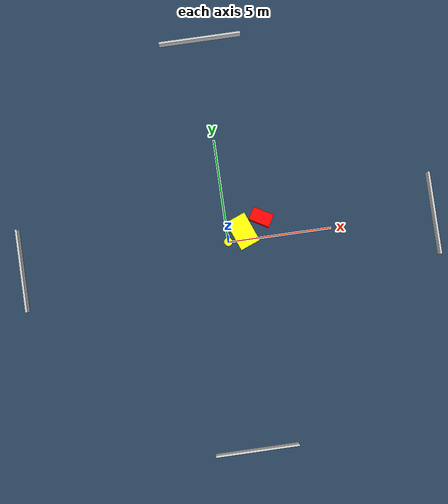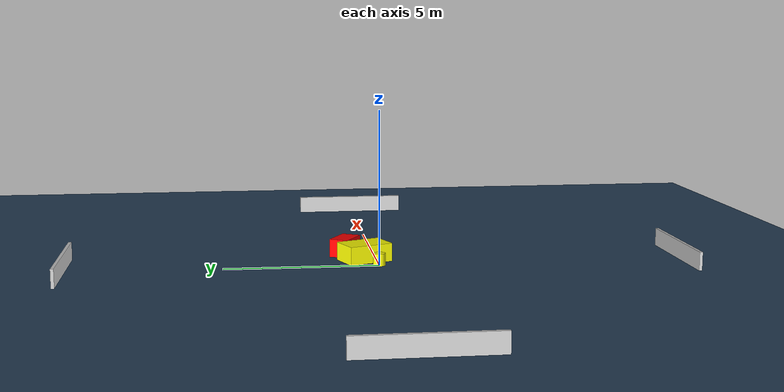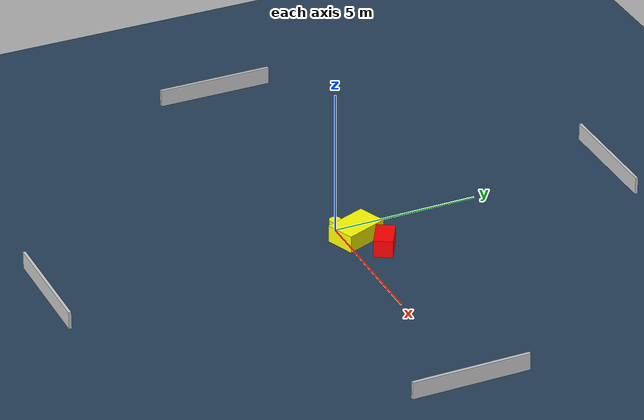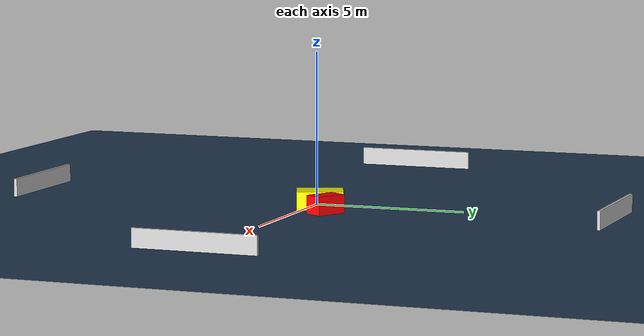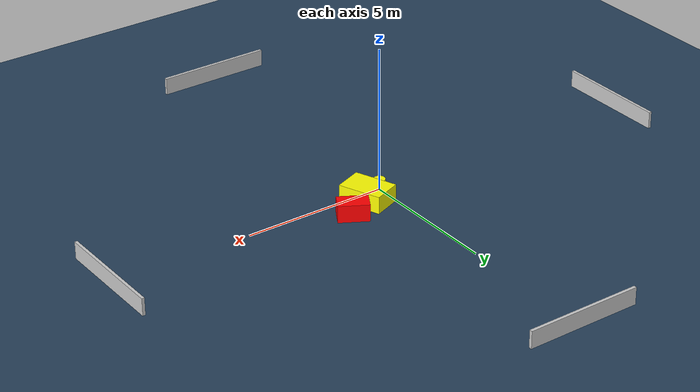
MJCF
<?xml version="1.0" ?>
<mujoco model="generated_environment">
  <option timestep="0.01" integrator="RK4" cone="elliptic"/>
  <default>
    <geom density="1"/>
  </default>
  <asset>
    <texture builtin="gradient" height="3072" name="skybox" rgb1="0.3 0.5 0.7" rgb2="0 0 0" type="skybox" width="512"/>
    <texture builtin="checker" height="300" name="groundplane" rgb1="0.2 0.3 0.4" rgb2="0.1 0.2 0.3" type="2d" width="300"/>
    <material name="groundplane" reflectance="0.2" texrepeat="5 5" texture="groundplane"/>
  </asset>
  <worldbody>
    <light dir="0 0 -1" directional="true" pos="0 0 1.5"/>
    <geom condim="3" friction="0.5 0.005 0.001" material="groundplane" name="floor" pos="0 0 0" size="0 0 0.05" type="plane"/>
    <body name="walls">
      <geom name="wall_1" condim="4" pos="-10.0 0.0 0.3" rgba="0.800000011920929 0.800000011920929 0.800000011920929 1.0" size="0.05 2.0 0.3" type="box"/>
      <geom name="wall_2" condim="4" pos="10.0 0.0 0.3" rgba="0.800000011920929 0.800000011920929 0.800000011920929 1.0" size="0.05 2.0 0.3" type="box"/>
      <geom name="wall_3" condim="4" pos="0.0 -10.0 0.3" rgba="0.800000011920929 0.800000011920929 0.800000011920929 1.0" size="2.0 0.05 0.3" type="box"/>
      <geom name="wall_4" condim="4" pos="0.0 10.0 0.3" rgba="0.800000011920929 0.800000011920929 0.800000011920929 1.0" size="2.0 0.05 0.3" type="box"/>
    </body>
    <body name="robot">
      <joint name="joint_x" type="slide" pos="0 0 0" axis="1 0 0"/>
      <joint name="joint_y" type="slide" pos="0 0 0" axis="0 1 0"/>
      <geom name="robot" type="cylinder" pos="0.0 0.0 0.2" size="0.2 0.2 0.0" mass="5.0" friction="1.0 0.005 0.0001" condim="4" rgba="1.0 1.0 0.0 1.0"/>
    </body>
    <body name="obstacle_1_movable">
      <geom name="obstacle_1_movable" condim="4" pos="0.7583308771716738 0.39249926106174016 0.3" euler="0 0 291.31041325464815" friction="0.0 0.005 0.001" rgba="1.0 1.0 0.0 1.0" size="0.7563631204207357 0.505180605120678 0.3" type="box" mass="0.1"/>
      <joint type="free"/>
    </body>
    <body name="obstacle_2_static">
      <geom name="obstacle_2_static" condim="4" pos="1.7292924518689223 0.9545782207133966 0.3" euler="0 0 329.989481521295" friction="0.0 0.005 0.001" rgba="1.0 0.0 0.0 1.0" size="0.5209495618726827 0.32041382537014845 0.3" type="box"/>
    </body>
  </worldbody>
  <actuator>
    <motor name="actuator_x" joint="joint_x" gear="1" ctrlrange="-1 1"/>
    <motor name="actuator_y" joint="joint_y" gear="1" ctrlrange="-1 1"/>
  </actuator>
</mujoco>
